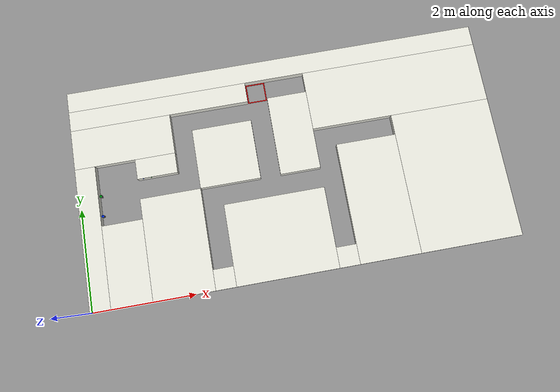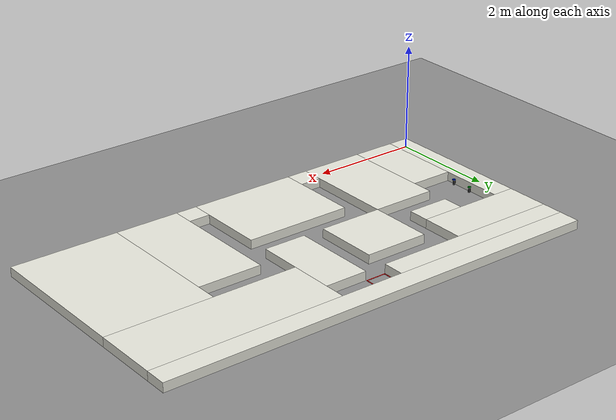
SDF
<sdf version="1.9">
 <world name="ros2_world">
  <model name="ground_plane">
   <static>true</static>
   <link name="link">
    <collision name="collision">
     <geometry><plane><normal>0 0 1</normal><size>30 30</size></plane></geometry>
    </collision>
    <visual name="visual">
     <geometry><plane><normal>0 0 1</normal><size>30 30</size></plane></geometry>
     <material><ambient>0.55 0.55 0.55 1</ambient><diffuse>0.55 0.55 0.55 1</diffuse></material>
    </visual>
   </link>
  </model>
  <model name="paredes">
   <static>true</static>
   <link name="bloque_0">
    <pose>4.2 4.2 0.085 0 0 0</pose>
    <collision name="colision"><geometry><box><size>8.4 0.4 0.17</size></box></geometry></collision>
    <visual name="visual">
     <geometry><box><size>8.4 0.4 0.17</size></box></geometry>
     <material><ambient>0.9 0.9 0.86 1</ambient><diffuse>0.9 0.9 0.86 1</diffuse></material>
    </visual>
   </link>
   <link name="bloque_1">
    <pose>1.8 3.8 0.085 0 0 0</pose>
    <collision name="colision"><geometry><box><size>3.6 0.4 0.17</size></box></geometry></collision>
    <visual name="visual">
     <geometry><box><size>3.6 0.4 0.17</size></box></geometry>
     <material><ambient>0.9 0.9 0.86 1</ambient><diffuse>0.9 0.9 0.86 1</diffuse></material>
    </visual>
   </link>
   <link name="bloque_2">
    <pose>6.6 3.4 0.085 0 0 0</pose>
    <collision name="colision"><geometry><box><size>3.6 1.2 0.17</size></box></geometry></collision>
    <visual name="visual">
     <geometry><box><size>3.6 1.2 0.17</size></box></geometry>
     <material><ambient>0.9 0.9 0.86 1</ambient><diffuse>0.9 0.9 0.86 1</diffuse></material>
    </visual>
   </link>
   <link name="bloque_3">
    <pose>1 3.2 0.085 0 0 0</pose>
    <collision name="colision"><geometry><box><size>2 0.8 0.17</size></box></geometry></collision>
    <visual name="visual">
     <geometry><box><size>2 0.8 0.17</size></box></geometry>
     <material><ambient>0.9 0.9 0.86 1</ambient><diffuse>0.9 0.9 0.86 1</diffuse></material>
    </visual>
   </link>
   <link name="bloque_4">
    <pose>4.4 2.8 0.085 0 0 0</pose>
    <collision name="colision"><geometry><box><size>0.8 1.6 0.17</size></box></geometry></collision>
    <visual name="visual">
     <geometry><box><size>0.8 1.6 0.17</size></box></geometry>
     <material><ambient>0.9 0.9 0.86 1</ambient><diffuse>0.9 0.9 0.86 1</diffuse></material>
    </visual>
   </link>
   <link name="bloque_5">
    <pose>3 2.6 0.085 0 0 0</pose>
    <collision name="colision"><geometry><box><size>1.2 1.2 0.17</size></box></geometry></collision>
    <visual name="visual">
     <geometry><box><size>1.2 1.2 0.17</size></box></geometry>
     <material><ambient>0.9 0.9 0.86 1</ambient><diffuse>0.9 0.9 0.86 1</diffuse></material>
    </visual>
   </link>
   <link name="bloque_6">
    <pose>0.2 1.4 0.085 0 0 0</pose>
    <collision name="colision"><geometry><box><size>0.4 2.8 0.17</size></box></geometry></collision>
    <visual name="visual">
     <geometry><box><size>0.4 2.8 0.17</size></box></geometry>
     <material><ambient>0.9 0.9 0.86 1</ambient><diffuse>0.9 0.9 0.86 1</diffuse></material>
    </visual>
   </link>
   <link name="bloque_7">
    <pose>1.6 2.6 0.085 0 0 0</pose>
    <collision name="colision"><geometry><box><size>0.8 0.4 0.17</size></box></geometry></collision>
    <visual name="visual">
     <geometry><box><size>0.8 0.4 0.17</size></box></geometry>
     <material><ambient>0.9 0.9 0.86 1</ambient><diffuse>0.9 0.9 0.86 1</diffuse></material>
    </visual>
   </link>
   <link name="bloque_8">
    <pose>7.4 1.4 0.085 0 0 0</pose>
    <collision name="colision"><geometry><box><size>2 2.8 0.17</size></box></geometry></collision>
    <visual name="visual">
     <geometry><box><size>2 2.8 0.17</size></box></geometry>
     <material><ambient>0.9 0.9 0.86 1</ambient><diffuse>0.9 0.9 0.86 1</diffuse></material>
    </visual>
   </link>
   <link name="bloque_9">
    <pose>5.8 1.2 0.085 0 0 0</pose>
    <collision name="colision"><geometry><box><size>1.2 2.4 0.17</size></box></geometry></collision>
    <visual name="visual">
     <geometry><box><size>1.2 2.4 0.17</size></box></geometry>
     <material><ambient>0.9 0.9 0.86 1</ambient><diffuse>0.9 0.9 0.86 1</diffuse></material>
    </visual>
   </link>
   <link name="bloque_10">
    <pose>1.8 1 0.085 0 0 0</pose>
    <collision name="colision"><geometry><box><size>1.2 2 0.17</size></box></geometry></collision>
    <visual name="visual">
     <geometry><box><size>1.2 2 0.17</size></box></geometry>
     <material><ambient>0.9 0.9 0.86 1</ambient><diffuse>0.9 0.9 0.86 1</diffuse></material>
    </visual>
   </link>
   <link name="bloque_11">
    <pose>0.8 0.8 0.085 0 0 0</pose>
    <collision name="colision"><geometry><box><size>0.8 1.6 0.17</size></box></geometry></collision>
    <visual name="visual">
     <geometry><box><size>0.8 1.6 0.17</size></box></geometry>
     <material><ambient>0.9 0.9 0.86 1</ambient><diffuse>0.9 0.9 0.86 1</diffuse></material>
    </visual>
   </link>
   <link name="bloque_12">
    <pose>3.8 0.8 0.085 0 0 0</pose>
    <collision name="colision"><geometry><box><size>2 1.6 0.17</size></box></geometry></collision>
    <visual name="visual">
     <geometry><box><size>2 1.6 0.17</size></box></geometry>
     <material><ambient>0.9 0.9 0.86 1</ambient><diffuse>0.9 0.9 0.86 1</diffuse></material>
    </visual>
   </link>
   <link name="bloque_13">
    <pose>2.6 0.2 0.085 0 0 0</pose>
    <collision name="colision"><geometry><box><size>0.4 0.4 0.17</size></box></geometry></collision>
    <visual name="visual">
     <geometry><box><size>0.4 0.4 0.17</size></box></geometry>
     <material><ambient>0.9 0.9 0.86 1</ambient><diffuse>0.9 0.9 0.86 1</diffuse></material>
    </visual>
   </link>
   <link name="bloque_14">
    <pose>5 0.2 0.085 0 0 0</pose>
    <collision name="colision"><geometry><box><size>0.4 0.4 0.17</size></box></geometry></collision>
    <visual name="visual">
     <geometry><box><size>0.4 0.4 0.17</size></box></geometry>
     <material><ambient>0.9 0.9 0.86 1</ambient><diffuse>0.9 0.9 0.86 1</diffuse></material>
    </visual>
   </link>
  </model>
  <model name="zonas_prohibidas">
   <static>true</static>
   <link name="zona_0">
    <visual name="norte">
     <pose>3.8 3.985 0.0005 0 0 0</pose>
     <geometry><box><size>0.39 0.02 0.001</size></box></geometry>
     <material><ambient>0.85 0 0 1</ambient><diffuse>0.85 0 0 1</diffuse></material>
    </visual>
    <visual name="sur">
     <pose>3.8 3.615 0.0005 0 0 0</pose>
     <geometry><box><size>0.39 0.02 0.001</size></box></geometry>
     <material><ambient>0.85 0 0 1</ambient><diffuse>0.85 0 0 1</diffuse></material>
    </visual>
    <visual name="este">
     <pose>3.985 3.8 0.0005 0 0 0</pose>
     <geometry><box><size>0.02 0.35 0.001</size></box></geometry>
     <material><ambient>0.85 0 0 1</ambient><diffuse>0.85 0 0 1</diffuse></material>
    </visual>
    <visual name="oeste">
     <pose>3.615 3.8 0.0005 0 0 0</pose>
     <geometry><box><size>0.02 0.35 0.001</size></box></geometry>
     <material><ambient>0.85 0 0 1</ambient><diffuse>0.85 0 0 1</diffuse></material>
    </visual>
   </link>
  </model>
  <model name="flechas">
   <static>true</static>
   <link name="flecha_7">
    <pose>1.32 2.39875 0.115 0 0 0</pose>
    <visual name="p0">
     <pose>-0.0065 0 0 0 0 0</pose>
     <geometry><box><size>0.047 0.0015 0.01</size></box></geometry>
     <material><ambient>0 0.2 1 1</ambient><diffuse>0 0.2 1 1</diffuse></material>
    </visual>
    <visual name="p1">
     <pose>0.01726 0 0 0 0 0</pose>
     <geometry><box><size>0.00052 0.0015 0.029</size></box></geometry>
     <material><ambient>0 0.2 1 1</ambient><diffuse>0 0.2 1 1</diffuse></material>
    </visual>
    <visual name="p2">
     <pose>0.01778 0 0 0 0 0</pose>
     <geometry><box><size>0.00052 0.0015 0.02784</size></box></geometry>
     <material><ambient>0 0.2 1 1</ambient><diffuse>0 0.2 1 1</diffuse></material>
    </visual>
    <visual name="p3">
     <pose>0.0183 0 0 0 0 0</pose>
     <geometry><box><size>0.00052 0.0015 0.02668</size></box></geometry>
     <material><ambient>0 0.2 1 1</ambient><diffuse>0 0.2 1 1</diffuse></material>
    </visual>
    <visual name="p4">
     <pose>0.01882 0 0 0 0 0</pose>
     <geometry><box><size>0.00052 0.0015 0.02552</size></box></geometry>
     <material><ambient>0 0.2 1 1</ambient><diffuse>0 0.2 1 1</diffuse></material>
    </visual>
    <visual name="p5">
     <pose>0.01934 0 0 0 0 0</pose>
     <geometry><box><size>0.00052 0.0015 0.02436</size></box></geometry>
     <material><ambient>0 0.2 1 1</ambient><diffuse>0 0.2 1 1</diffuse></material>
    </visual>
    <visual name="p6">
     <pose>0.01986 0 0 0 0 0</pose>
     <geometry><box><size>0.00052 0.0015 0.0232</size></box></geometry>
     <material><ambient>0 0.2 1 1</ambient><diffuse>0 0.2 1 1</diffuse></material>
    </visual>
    <visual name="p7">
     <pose>0.02038 0 0 0 0 0</pose>
     <geometry><box><size>0.00052 0.0015 0.02204</size></box></geometry>
     <material><ambient>0 0.2 1 1</ambient><diffuse>0 0.2 1 1</diffuse></material>
    </visual>
    <visual name="p8">
     <pose>0.0209 0 0 0 0 0</pose>
     <geometry><box><size>0.00052 0.0015 0.02088</size></box></geometry>
     <material><ambient>0 0.2 1 1</ambient><diffuse>0 0.2 1 1</diffuse></material>
    </visual>
    <visual name="p9">
     <pose>0.02142 0 0 0 0 0</pose>
     <geometry><box><size>0.00052 0.0015 0.01972</size></box></geometry>
     <material><ambient>0 0.2 1 1</ambient><diffuse>0 0.2 1 1</diffuse></material>
    </visual>
    <visual name="p10">
     <pose>0.02194 0 0 0 0 0</pose>
     <geometry><box><size>0.00052 0.0015 0.01856</size></box></geometry>
     <material><ambient>0 0.2 1 1</ambient><diffuse>0 0.2 1 1</diffuse></material>
    </visual>
    <visual name="p11">
     <pose>0.02246 0 0 0 0 0</pose>
     <geometry><box><size>0.00052 0.0015 0.0174</size></box></geometry>
     <material><ambient>0 0.2 1 1</ambient><diffuse>0 0.2 1 1</diffuse></material>
    </visual>
    <visual name="p12">
     <pose>0.02298 0 0 0 0 0</pose>
     <geometry><box><size>0.00052 0.0015 0.01624</size></box></geometry>
     <material><ambient>0 0.2 1 1</ambient><diffuse>0 0.2 1 1</diffuse></material>
    </visual>
    <visual name="p13">
     <pose>0.0235 0 0 0 0 0</pose>
     <geometry><box><size>0.00052 0.0015 0.01508</size></box></geometry>
     <material><ambient>0 0.2 1 1</ambient><diffuse>0 0.2 1 1</diffuse></material>
    </visual>
    <visual name="p14">
     <pose>0.02402 0 0 0 0 0</pose>
     <geometry><box><size>0.00052 0.0015 0.01392</size></box></geometry>
     <material><ambient>0 0.2 1 1</ambient><diffuse>0 0.2 1 1</diffuse></material>
    </visual>
    <visual name="p15">
     <pose>0.02454 0 0 0 0 0</pose>
     <geometry><box><size>0.00052 0.0015 0.01276</size></box></geometry>
     <material><ambient>0 0.2 1 1</ambient><diffuse>0 0.2 1 1</diffuse></material>
    </visual>
    <visual name="p16">
     <pose>0.02506 0 0 0 0 0</pose>
     <geometry><box><size>0.00052 0.0015 0.0116</size></box></geometry>
     <material><ambient>0 0.2 1 1</ambient><diffuse>0 0.2 1 1</diffuse></material>
    </visual>
    <visual name="p17">
     <pose>0.02558 0 0 0 0 0</pose>
     <geometry><box><size>0.00052 0.0015 0.01044</size></box></geometry>
     <material><ambient>0 0.2 1 1</ambient><diffuse>0 0.2 1 1</diffuse></material>
    </visual>
    <visual name="p18">
     <pose>0.0261 0 0 0 0 0</pose>
     <geometry><box><size>0.00052 0.0015 0.00928</size></box></geometry>
     <material><ambient>0 0.2 1 1</ambient><diffuse>0 0.2 1 1</diffuse></material>
    </visual>
    <visual name="p19">
     <pose>0.02662 0 0 0 0 0</pose>
     <geometry><box><size>0.00052 0.0015 0.00812</size></box></geometry>
     <material><ambient>0 0.2 1 1</ambient><diffuse>0 0.2 1 1</diffuse></material>
    </visual>
    <visual name="p20">
     <pose>0.02714 0 0 0 0 0</pose>
     <geometry><box><size>0.00052 0.0015 0.00696</size></box></geometry>
     <material><ambient>0 0.2 1 1</ambient><diffuse>0 0.2 1 1</diffuse></material>
    </visual>
    <visual name="p21">
     <pose>0.02766 0 0 0 0 0</pose>
     <geometry><box><size>0.00052 0.0015 0.0058</size></box></geometry>
     <material><ambient>0 0.2 1 1</ambient><diffuse>0 0.2 1 1</diffuse></material>
    </visual>
    <visual name="p22">
     <pose>0.02818 0 0 0 0 0</pose>
     <geometry><box><size>0.00052 0.0015 0.00464</size></box></geometry>
     <material><ambient>0 0.2 1 1</ambient><diffuse>0 0.2 1 1</diffuse></material>
    </visual>
    <visual name="p23">
     <pose>0.0287 0 0 0 0 0</pose>
     <geometry><box><size>0.00052 0.0015 0.00348</size></box></geometry>
     <material><ambient>0 0.2 1 1</ambient><diffuse>0 0.2 1 1</diffuse></material>
    </visual>
    <visual name="p24">
     <pose>0.02922 0 0 0 0 0</pose>
     <geometry><box><size>0.00052 0.0015 0.00232</size></box></geometry>
     <material><ambient>0 0.2 1 1</ambient><diffuse>0 0.2 1 1</diffuse></material>
    </visual>
    <visual name="p25">
     <pose>0.02974 0 0 0 0 0</pose>
     <geometry><box><size>0.00052 0.0015 0.00116</size></box></geometry>
     <material><ambient>0 0.2 1 1</ambient><diffuse>0 0.2 1 1</diffuse></material>
    </visual>
   </link>
   <link name="flecha_8">
    <pose>1.48 2.39875 0.125 0 0 0</pose>
    <visual name="p0">
     <pose>-0.0065 0 0 0 0 0</pose>
     <geometry><box><size>0.047 0.0015 0.01</size></box></geometry>
     <material><ambient>0 0.7 0.1 1</ambient><diffuse>0 0.7 0.1 1</diffuse></material>
    </visual>
    <visual name="p1">
     <pose>0.01726 0 0 0 0 0</pose>
     <geometry><box><size>0.00052 0.0015 0.029</size></box></geometry>
     <material><ambient>0 0.7 0.1 1</ambient><diffuse>0 0.7 0.1 1</diffuse></material>
    </visual>
    <visual name="p2">
     <pose>0.01778 0 0 0 0 0</pose>
     <geometry><box><size>0.00052 0.0015 0.02784</size></box></geometry>
     <material><ambient>0 0.7 0.1 1</ambient><diffuse>0 0.7 0.1 1</diffuse></material>
    </visual>
    <visual name="p3">
     <pose>0.0183 0 0 0 0 0</pose>
     <geometry><box><size>0.00052 0.0015 0.02668</size></box></geometry>
     <material><ambient>0 0.7 0.1 1</ambient><diffuse>0 0.7 0.1 1</diffuse></material>
    </visual>
    <visual name="p4">
     <pose>0.01882 0 0 0 0 0</pose>
     <geometry><box><size>0.00052 0.0015 0.02552</size></box></geometry>
     <material><ambient>0 0.7 0.1 1</ambient><diffuse>0 0.7 0.1 1</diffuse></material>
    </visual>
    <visual name="p5">
     <pose>0.01934 0 0 0 0 0</pose>
     <geometry><box><size>0.00052 0.0015 0.02436</size></box></geometry>
     <material><ambient>0 0.7 0.1 1</ambient><diffuse>0 0.7 0.1 1</diffuse></material>
    </visual>
    <visual name="p6">
     <pose>0.01986 0 0 0 0 0</pose>
     <geometry><box><size>0.00052 0.0015 0.0232</size></box></geometry>
     <material><ambient>0 0.7 0.1 1</ambient><diffuse>0 0.7 0.1 1</diffuse></material>
    </visual>
    <visual name="p7">
     <pose>0.02038 0 0 0 0 0</pose>
     <geometry><box><size>0.00052 0.0015 0.02204</size></box></geometry>
     <material><ambient>0 0.7 0.1 1</ambient><diffuse>0 0.7 0.1 1</diffuse></material>
    </visual>
    <visual name="p8">
     <pose>0.0209 0 0 0 0 0</pose>
     <geometry><box><size>0.00052 0.0015 0.02088</size></box></geometry>
     <material><ambient>0 0.7 0.1 1</ambient><diffuse>0 0.7 0.1 1</diffuse></material>
    </visual>
    <visual name="p9">
     <pose>0.02142 0 0 0 0 0</pose>
     <geometry><box><size>0.00052 0.0015 0.01972</size></box></geometry>
     <material><ambient>0 0.7 0.1 1</ambient><diffuse>0 0.7 0.1 1</diffuse></material>
    </visual>
    <visual name="p10">
     <pose>0.02194 0 0 0 0 0</pose>
     <geometry><box><size>0.00052 0.0015 0.01856</size></box></geometry>
     <material><ambient>0 0.7 0.1 1</ambient><diffuse>0 0.7 0.1 1</diffuse></material>
    </visual>
    <visual name="p11">
     <pose>0.02246 0 0 0 0 0</pose>
     <geometry><box><size>0.00052 0.0015 0.0174</size></box></geometry>
     <material><ambient>0 0.7 0.1 1</ambient><diffuse>0 0.7 0.1 1</diffuse></material>
    </visual>
    <visual name="p12">
     <pose>0.02298 0 0 0 0 0</pose>
     <geometry><box><size>0.00052 0.0015 0.01624</size></box></geometry>
     <material><ambient>0 0.7 0.1 1</ambient><diffuse>0 0.7 0.1 1</diffuse></material>
    </visual>
    <visual name="p13">
     <pose>0.0235 0 0 0 0 0</pose>
     <geometry><box><size>0.00052 0.0015 0.01508</size></box></geometry>
     <material><ambient>0 0.7 0.1 1</ambient><diffuse>0 0.7 0.1 1</diffuse></material>
    </visual>
    <visual name="p14">
     <pose>0.02402 0 0 0 0 0</pose>
     <geometry><box><size>0.00052 0.0015 0.01392</size></box></geometry>
     <material><ambient>0 0.7 0.1 1</ambient><diffuse>0 0.7 0.1 1</diffuse></material>
    </visual>
    <visual name="p15">
     <pose>0.02454 0 0 0 0 0</pose>
     <geometry><box><size>0.00052 0.0015 0.01276</size></box></geometry>
     <material><ambient>0 0.7 0.1 1</ambient><diffuse>0 0.7 0.1 1</diffuse></material>
    </visual>
    <visual name="p16">
     <pose>0.02506 0 0 0 0 0</pose>
     <geometry><box><size>0.00052 0.0015 0.0116</size></box></geometry>
     <material><ambient>0 0.7 0.1 1</ambient><diffuse>0 0.7 0.1 1</diffuse></material>
    </visual>
    <visual name="p17">
     <pose>0.02558 0 0 0 0 0</pose>
     <geometry><box><size>0.00052 0.0015 0.01044</size></box></geometry>
     <material><ambient>0 0.7 0.1 1</ambient><diffuse>0 0.7 0.1 1</diffuse></material>
    </visual>
    <visual name="p18">
     <pose>0.0261 0 0 0 0 0</pose>
     <geometry><box><size>0.00052 0.0015 0.00928</size></box></geometry>
     <material><ambient>0 0.7 0.1 1</ambient><diffuse>0 0.7 0.1 1</diffuse></material>
    </visual>
    <visual name="p19">
     <pose>0.02662 0 0 0 0 0</pose>
     <geometry><box><size>0.00052 0.0015 0.00812</size></box></geometry>
     <material><ambient>0 0.7 0.1 1</ambient><diffuse>0 0.7 0.1 1</diffuse></material>
    </visual>
    <visual name="p20">
     <pose>0.02714 0 0 0 0 0</pose>
     <geometry><box><size>0.00052 0.0015 0.00696</size></box></geometry>
     <material><ambient>0 0.7 0.1 1</ambient><diffuse>0 0.7 0.1 1</diffuse></material>
    </visual>
    <visual name="p21">
     <pose>0.02766 0 0 0 0 0</pose>
     <geometry><box><size>0.00052 0.0015 0.0058</size></box></geometry>
     <material><ambient>0 0.7 0.1 1</ambient><diffuse>0 0.7 0.1 1</diffuse></material>
    </visual>
    <visual name="p22">
     <pose>0.02818 0 0 0 0 0</pose>
     <geometry><box><size>0.00052 0.0015 0.00464</size></box></geometry>
     <material><ambient>0 0.7 0.1 1</ambient><diffuse>0 0.7 0.1 1</diffuse></material>
    </visual>
    <visual name="p23">
     <pose>0.0287 0 0 0 0 0</pose>
     <geometry><box><size>0.00052 0.0015 0.00348</size></box></geometry>
     <material><ambient>0 0.7 0.1 1</ambient><diffuse>0 0.7 0.1 1</diffuse></material>
    </visual>
    <visual name="p24">
     <pose>0.02922 0 0 0 0 0</pose>
     <geometry><box><size>0.00052 0.0015 0.00232</size></box></geometry>
     <material><ambient>0 0.7 0.1 1</ambient><diffuse>0 0.7 0.1 1</diffuse></material>
    </visual>
    <visual name="p25">
     <pose>0.02974 0 0 0 0 0</pose>
     <geometry><box><size>0.00052 0.0015 0.00116</size></box></geometry>
     <material><ambient>0 0.7 0.1 1</ambient><diffuse>0 0.7 0.1 1</diffuse></material>
    </visual>
   </link>
  </model>
  <model name="soporte_canasto_verde">
   <static>true</static>
   <pose>0.432 2.2 0.04425 0 0 0</pose>
   <link name="link">
    <collision name="colision"><geometry><box><size>0.036 0.036 0.0885</size></box></geometry></collision>
    <visual name="visual">
     <geometry><box><size>0.036 0.036 0.0885</size></box></geometry>
     <material><ambient>0.05 0.05 0.05 1</ambient><diffuse>0.05 0.05 0.05 1</diffuse></material>
    </visual>
   </link>
  </model>
  <model name="canasto_verde">
   <static>true</static>
   <pose>0.432 2.2 0.0885 0 0 0</pose>
   <link name="link">
    <collision name="c_fondo">
     <pose>0 0 0.0005 0 0 0</pose>
     <geometry><box><size>0.044 0.044 0.001</size></box></geometry>
     <surface><friction><ode><mu>1</mu><mu2>1</mu2></ode></friction></surface>
    </collision>
    <visual name="v_fondo">
     <pose>0 0 0.0005 0 0 0</pose>
     <geometry><box><size>0.044 0.044 0.001</size></box></geometry>
     <material><ambient>0 0.7 0.1 1</ambient><diffuse>0 0.7 0.1 1</diffuse></material>
    </visual>
    <collision name="c_pared_n">
     <pose>0 0.021 0.01 0 0 0</pose>
     <geometry><box><size>0.044 0.002 0.02</size></box></geometry>
     <surface><friction><ode><mu>1</mu><mu2>1</mu2></ode></friction></surface>
    </collision>
    <visual name="v_pared_n">
     <pose>0 0.021 0.01 0 0 0</pose>
     <geometry><box><size>0.044 0.002 0.02</size></box></geometry>
     <material><ambient>0 0.7 0.1 1</ambient><diffuse>0 0.7 0.1 1</diffuse></material>
    </visual>
    <collision name="c_pared_s">
     <pose>0 -0.021 0.01 0 0 0</pose>
     <geometry><box><size>0.044 0.002 0.02</size></box></geometry>
     <surface><friction><ode><mu>1</mu><mu2>1</mu2></ode></friction></surface>
    </collision>
    <visual name="v_pared_s">
     <pose>0 -0.021 0.01 0 0 0</pose>
     <geometry><box><size>0.044 0.002 0.02</size></box></geometry>
     <material><ambient>0 0.7 0.1 1</ambient><diffuse>0 0.7 0.1 1</diffuse></material>
    </visual>
    <collision name="c_pared_e">
     <pose>0.021 0 0.01 0 0 0</pose>
     <geometry><box><size>0.002 0.04 0.02</size></box></geometry>
     <surface><friction><ode><mu>1</mu><mu2>1</mu2></ode></friction></surface>
    </collision>
    <visual name="v_pared_e">
     <pose>0.021 0 0.01 0 0 0</pose>
     <geometry><box><size>0.002 0.04 0.02</size></box></geometry>
     <material><ambient>0 0.7 0.1 1</ambient><diffuse>0 0.7 0.1 1</diffuse></material>
    </visual>
    <collision name="c_pared_o">
     <pose>-0.021 0 0.01 0 0 0</pose>
     <geometry><box><size>0.002 0.04 0.02</size></box></geometry>
     <surface><friction><ode><mu>1</mu><mu2>1</mu2></ode></friction></surface>
    </collision>
    <visual name="v_pared_o">
     <pose>-0.021 0 0.01 0 0 0</pose>
     <geometry><box><size>0.002 0.04 0.02</size></box></geometry>
     <material><ambient>0 0.7 0.1 1</ambient><diffuse>0 0.7 0.1 1</diffuse></material>
    </visual>
   </link>
  </model>
  <model name="soporte_canasto_azul">
   <static>true</static>
   <pose>0.432 1.8 0.04425 0 0 0</pose>
   <link name="link">
    <collision name="colision"><geometry><box><size>0.036 0.036 0.0885</size></box></geometry></collision>
    <visual name="visual">
     <geometry><box><size>0.036 0.036 0.0885</size></box></geometry>
     <material><ambient>0.05 0.05 0.05 1</ambient><diffuse>0.05 0.05 0.05 1</diffuse></material>
    </visual>
   </link>
  </model>
  <model name="canasto_azul">
   <static>true</static>
   <pose>0.432 1.8 0.0885 0 0 0</pose>
   <link name="link">
    <collision name="c_fondo">
     <pose>0 0 0.0005 0 0 0</pose>
     <geometry><box><size>0.044 0.044 0.001</size></box></geometry>
     <surface><friction><ode><mu>1</mu><mu2>1</mu2></ode></friction></surface>
    </collision>
    <visual name="v_fondo">
     <pose>0 0 0.0005 0 0 0</pose>
     <geometry><box><size>0.044 0.044 0.001</size></box></geometry>
     <material><ambient>0 0.2 1 1</ambient><diffuse>0 0.2 1 1</diffuse></material>
    </visual>
    <collision name="c_pared_n">
     <pose>0 0.021 0.01 0 0 0</pose>
     <geometry><box><size>0.044 0.002 0.02</size></box></geometry>
     <surface><friction><ode><mu>1</mu><mu2>1</mu2></ode></friction></surface>
    </collision>
    <visual name="v_pared_n">
     <pose>0 0.021 0.01 0 0 0</pose>
     <geometry><box><size>0.044 0.002 0.02</size></box></geometry>
     <material><ambient>0 0.2 1 1</ambient><diffuse>0 0.2 1 1</diffuse></material>
    </visual>
    <collision name="c_pared_s">
     <pose>0 -0.021 0.01 0 0 0</pose>
     <geometry><box><size>0.044 0.002 0.02</size></box></geometry>
     <surface><friction><ode><mu>1</mu><mu2>1</mu2></ode></friction></surface>
    </collision>
    <visual name="v_pared_s">
     <pose>0 -0.021 0.01 0 0 0</pose>
     <geometry><box><size>0.044 0.002 0.02</size></box></geometry>
     <material><ambient>0 0.2 1 1</ambient><diffuse>0 0.2 1 1</diffuse></material>
    </visual>
    <collision name="c_pared_e">
     <pose>0.021 0 0.01 0 0 0</pose>
     <geometry><box><size>0.002 0.04 0.02</size></box></geometry>
     <surface><friction><ode><mu>1</mu><mu2>1</mu2></ode></friction></surface>
    </collision>
    <visual name="v_pared_e">
     <pose>0.021 0 0.01 0 0 0</pose>
     <geometry><box><size>0.002 0.04 0.02</size></box></geometry>
     <material><ambient>0 0.2 1 1</ambient><diffuse>0 0.2 1 1</diffuse></material>
    </visual>
    <collision name="c_pared_o">
     <pose>-0.021 0 0.01 0 0 0</pose>
     <geometry><box><size>0.002 0.04 0.02</size></box></geometry>
     <surface><friction><ode><mu>1</mu><mu2>1</mu2></ode></friction></surface>
    </collision>
    <visual name="v_pared_o">
     <pose>-0.021 0 0.01 0 0 0</pose>
     <geometry><box><size>0.002 0.04 0.02</size></box></geometry>
     <material><ambient>0 0.2 1 1</ambient><diffuse>0 0.2 1 1</diffuse></material>
    </visual>
   </link>
  </model>
 </world>
</sdf>
